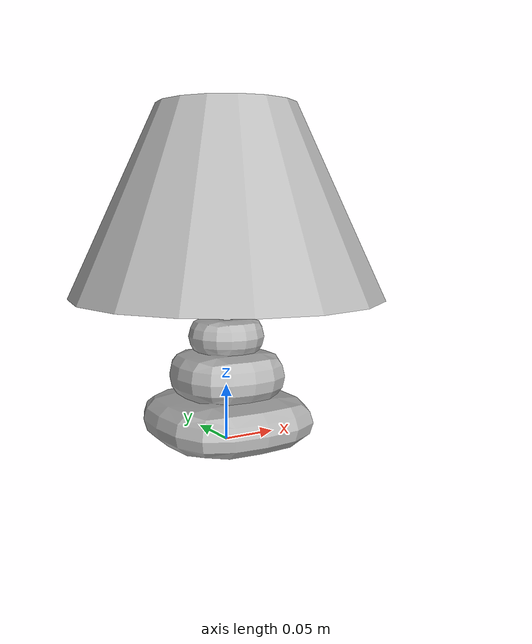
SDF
<?xml version='1.0'?>
<sdf version='1.4'>
  <model name='s__580'>
    <pose>0 0 0 0 0 0</pose>
    <static>true</static>
    <link name='link'>
      <collision name='collision'>
        <pose>0 0 0 0 0 0</pose>
        <geometry>
          <box>
            <size>0.28 0.28 2</size>
          </box>
        </geometry>
      </collision>
      <visual name='visual'>
        <pose>0 0 0 0 0 0</pose>
        <geometry>
          <mesh><uri>model://s__580/s__580.dae</uri></mesh>
        </geometry>
      </visual>
    </link>
  </model>
</sdf>
